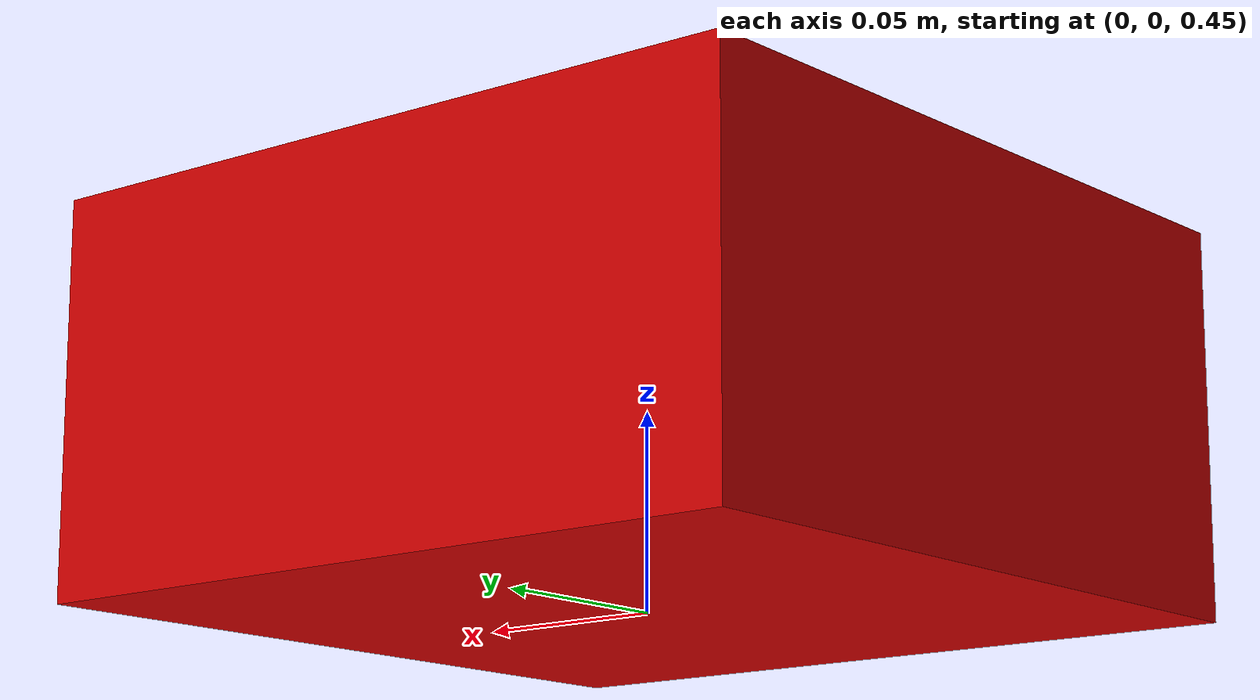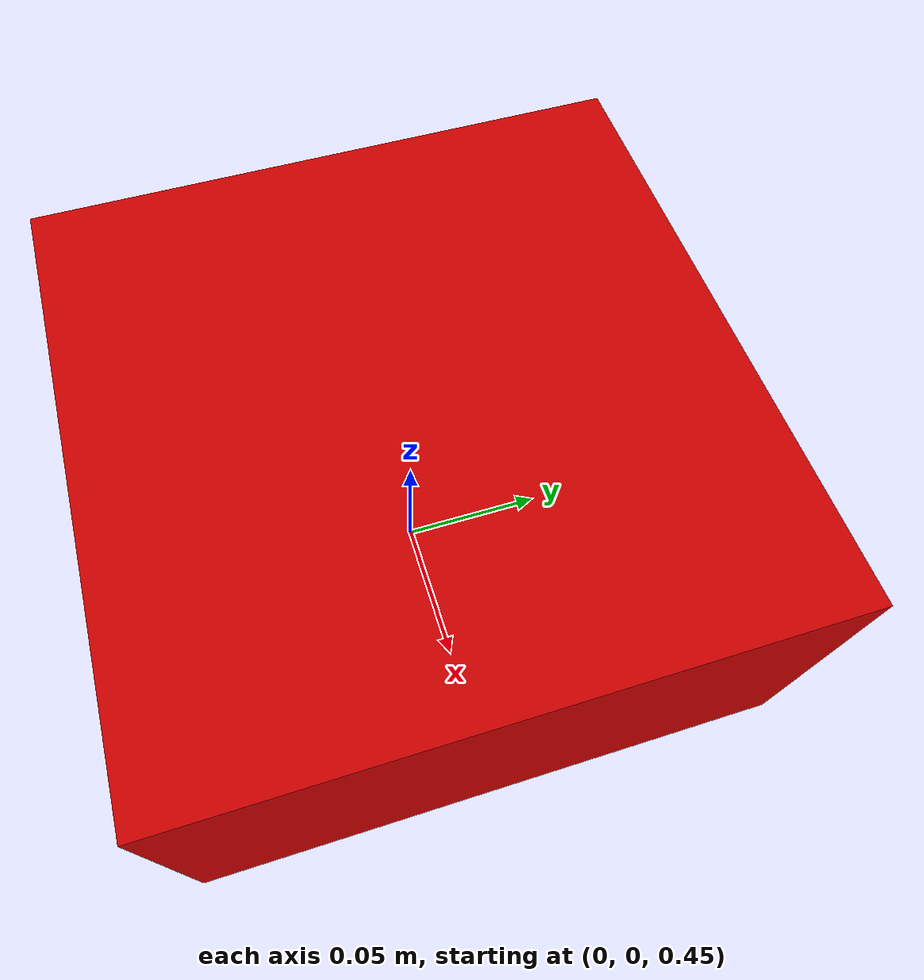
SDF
<?xml version='1.0'?>
<sdf version='1.7'>
  <model name='drone_model'>
    <pose>0 0 0.5 0 0 0</pose>
    <link name='base_link'>
      <inertial>
        <mass>1.0</mass>
        <inertia>
          <ixx>0.01</ixx>
          <ixy>0.0</ixy>
          <ixz>0.0</ixz>
          <iyy>0.01</iyy>
          <iyz>0.0</iyz>
          <izz>0.01</izz>
        </inertia>
      </inertial>
      <visual name='visual'>
        <geometry>
          <box>
            <size>0.2 0.2 0.1</size>
          </box>
        </geometry>
        <material>
          <ambient>0.8 0 0 1</ambient>
          <diffuse>0.8 0 0 1</diffuse>
        </material>
      </visual>
      <collision name='collision'>
        <geometry>
          <box>
            <size>0.2 0.2 0.1</size>
          </box>
        </geometry>
      </collision>
    </link>
    <static>false</static>
  </model>
</sdf>
